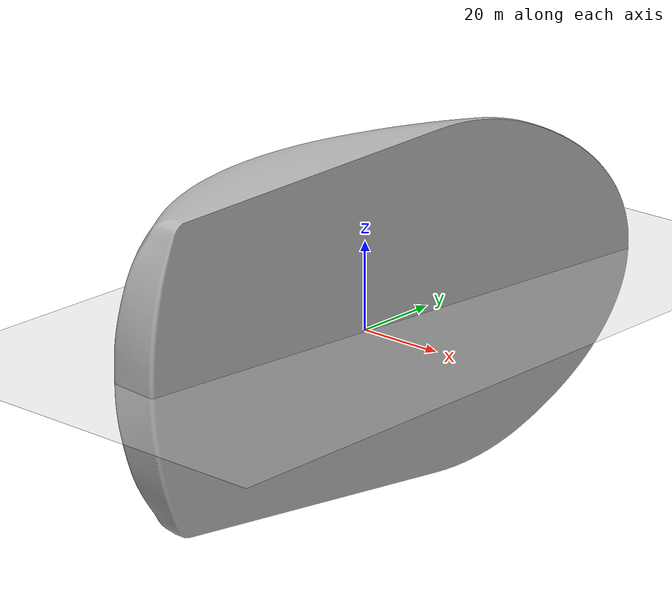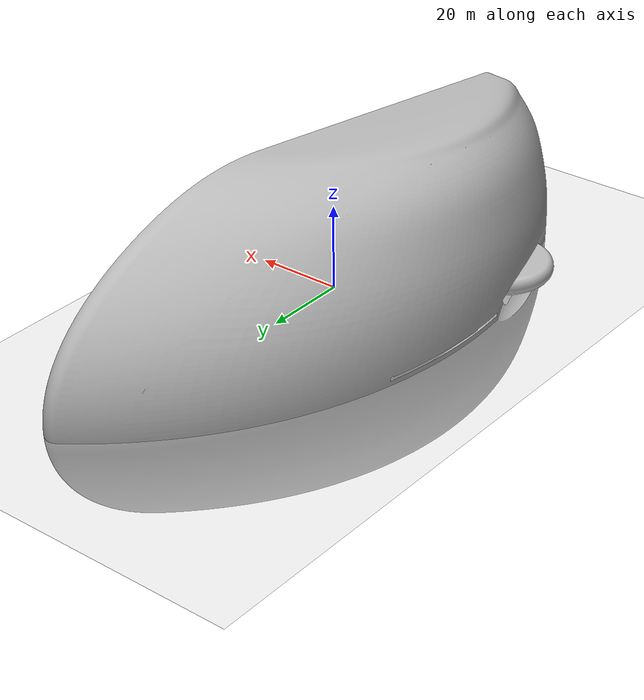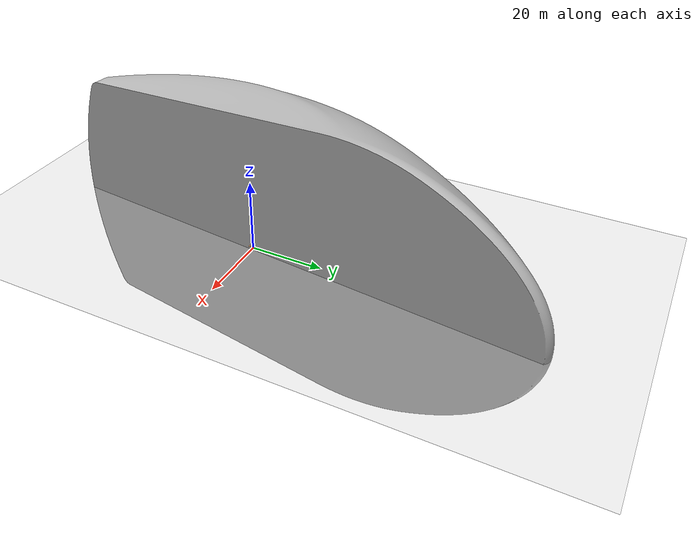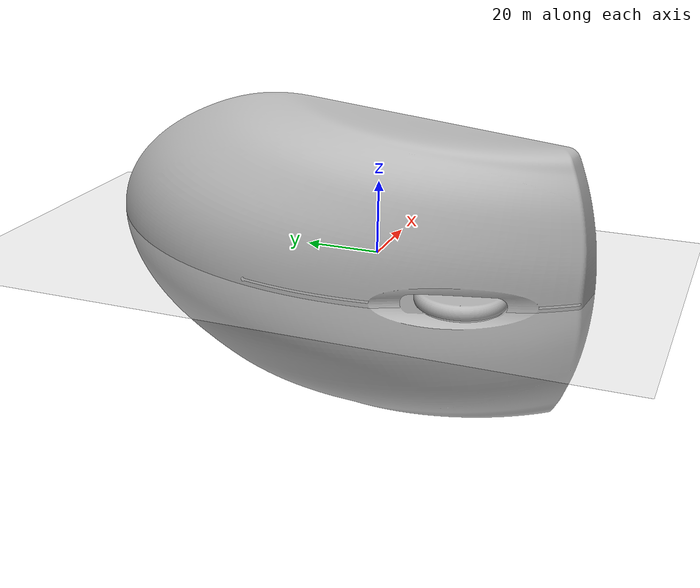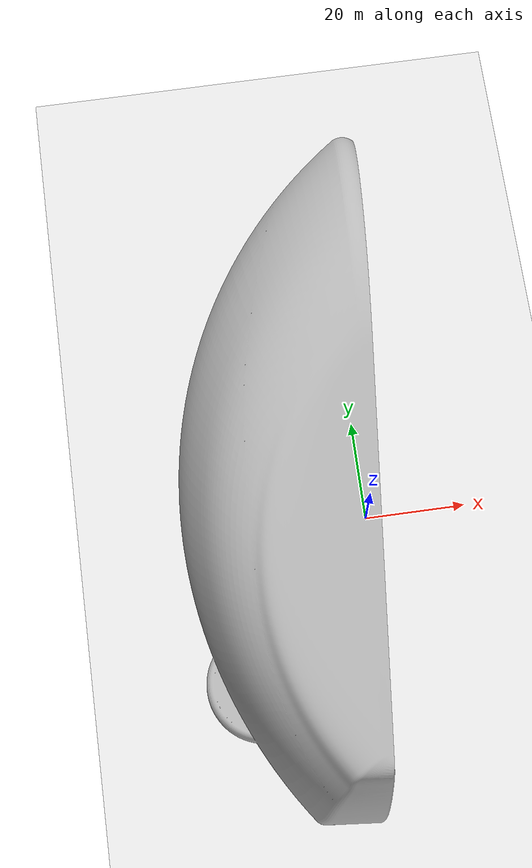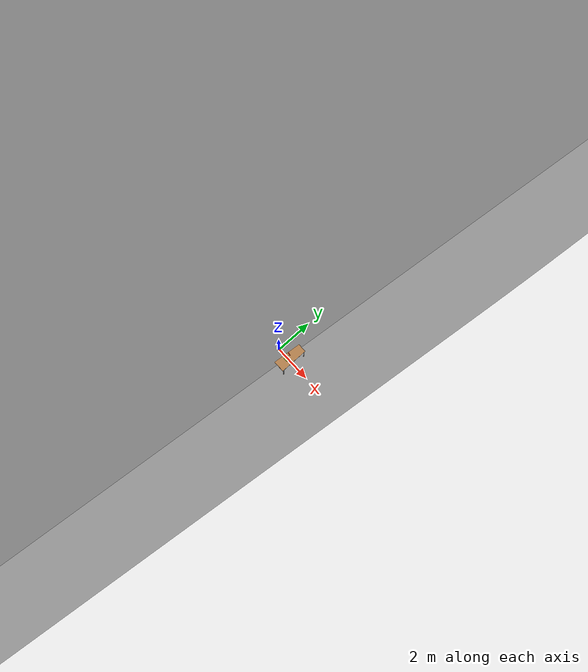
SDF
<sdf version="1.7">
 <world name="default">
  <plugin name="gazebo_ros_paths" filename="libgazebo_ros_paths_plugin.so"/>
  <light name="sun" type="directional">
   <pose>0 0 10 0 -0 0</pose>
   <diffuse>0.8 0.8 0.8 1</diffuse>
   <specular>0.2 0.2 0.2 1</specular>
   <attenuation>
    <range>1000</range>
    <constant>0.9</constant>
    <linear>0.01</linear>
    <quadratic>0.001</quadratic>
   </attenuation>
   <direction>-0.5 0.1 -0.9</direction>
   <spot><inner_angle>0</inner_angle><outer_angle>0</outer_angle><falloff>0</falloff></spot>
  </light>
  <model name="ground_plane">
   <static>1</static>
   <link name="link">
    <collision name="collision">
     <geometry><plane><normal>0 0 1</normal><size>100 100</size></plane></geometry>
     <surface><friction><ode><mu>100</mu><mu2>50</mu2></ode></friction></surface>
    </collision>
    <visual name="visual">
     <cast_shadows>0</cast_shadows>
     <geometry><plane><normal>0 0 1</normal><size>100 100</size></plane></geometry>
     <material>
      <script><uri>file://media/materials/scripts/gazebo.material</uri><name>Gazebo/Grey</name></script>
     </material>
    </visual>
   </link>
  </model>
  <gravity>0 0 -9.8</gravity>
  <magnetic_field>6e-06 2.3e-05 -4.2e-05</magnetic_field>
  <atmosphere type="adiabatic"/>
  <physics type="ode">
   <max_step_size>0.001</max_step_size>
   <real_time_factor>1</real_time_factor>
   <real_time_update_rate>1000</real_time_update_rate>
  </physics>
  <scene><ambient>0.4 0.4 0.4 1</ambient><background>0.7 0.7 0.7 1</background><shadows>1</shadows></scene>
  <audio><device>default</device></audio>
  <spherical_coordinates>
   <surface_model>EARTH_WGS84</surface_model>
   <latitude_deg>0</latitude_deg>
   <longitude_deg>0</longitude_deg>
   <elevation>0</elevation>
   <heading_deg>0</heading_deg>
  </spherical_coordinates>
  <model name="table">
   <static>1</static>
   <link name="link">
    <collision name="surface">
     <pose>0 0 1 0 -0 0</pose>
     <geometry><box><size>1.5 0.8 0.03</size></box></geometry>
     <surface>
      <friction><ode><mu>5</mu><mu2>5</mu2></ode></friction>
      <contact><ode><kp>2e+06</kp><kd>50</kd><min_depth>0.001</min_depth><max_vel>0.1</max_vel></ode></contact>
      <bounce><restitution_coefficient>0</restitution_coefficient><threshold>100000</threshold></bounce>
     </surface>
    </collision>
    <visual name="visual1">
     <pose>0 0 1 0 -0 0</pose>
     <geometry><box><size>1.5 0.8 0.03</size></box></geometry>
     <material>
      <script><uri>file://media/materials/scripts/gazebo.material</uri><name>Gazebo/Wood</name></script>
     </material>
    </visual>
    <collision name="front_left_leg">
     <pose>0.68 0.38 0.5 0 -0 0</pose>
     <geometry><cylinder><radius>0.02</radius><length>1</length></cylinder></geometry>
    </collision>
    <visual name="front_left_leg">
     <pose>0.68 0.38 0.5 0 -0 0</pose>
     <geometry><cylinder><radius>0.02</radius><length>1</length></cylinder></geometry>
     <material>
      <script><uri>file://media/materials/scripts/gazebo.material</uri><name>Gazebo/Grey</name></script>
     </material>
    </visual>
    <collision name="front_right_leg">
     <pose>0.68 -0.38 0.5 0 -0 0</pose>
     <geometry><cylinder><radius>0.02</radius><length>1</length></cylinder></geometry>
    </collision>
    <visual name="front_right_leg">
     <pose>0.68 -0.38 0.5 0 -0 0</pose>
     <geometry><cylinder><radius>0.02</radius><length>1</length></cylinder></geometry>
     <material>
      <script><uri>file://media/materials/scripts/gazebo.material</uri><name>Gazebo/Grey</name></script>
     </material>
    </visual>
    <collision name="back_right_leg">
     <pose>-0.68 -0.38 0.5 0 -0 0</pose>
     <geometry><cylinder><radius>0.02</radius><length>1</length></cylinder></geometry>
    </collision>
    <visual name="back_right_leg">
     <pose>-0.68 -0.38 0.5 0 -0 0</pose>
     <geometry><cylinder><radius>0.02</radius><length>1</length></cylinder></geometry>
     <material>
      <script><uri>file://media/materials/scripts/gazebo.material</uri><name>Gazebo/Grey</name></script>
     </material>
    </visual>
    <collision name="back_left_leg">
     <pose>-0.68 0.38 0.5 0 -0 0</pose>
     <geometry><cylinder><radius>0.02</radius><length>1</length></cylinder></geometry>
    </collision>
    <visual name="back_left_leg">
     <pose>-0.68 0.38 0.5 0 -0 0</pose>
     <geometry><cylinder><radius>0.02</radius><length>1</length></cylinder></geometry>
     <material>
      <script><uri>file://media/materials/scripts/gazebo.material</uri><name>Gazebo/Grey</name></script>
     </material>
    </visual>
   </link>
   <pose>0.716827 -0.005342 0 0 0.000248 1.56791</pose>
  </model>
  <model name="robo_basement">
   <link name="link_0">
    <inertial>
     <mass>1</mass>
     <inertia><ixx>0.145833</ixx><ixy>0</ixy><ixz>0</ixz><iyy>0.145833</iyy><iyz>0</iyz><izz>0.125</izz></inertia>
    </inertial>
    <visual name="visual">
     <geometry><cylinder><radius>0.2</radius><length>0.8</length></cylinder></geometry>
     <material>
      <lighting>1</lighting>
      <script><uri>file://media/materials/scripts/gazebo.material</uri><name>Gazebo/Grey</name></script>
      <shader type="pixel"><normal_map>__default__</normal_map></shader>
      <ambient>0 0 1 1</ambient>
      <diffuse>0.7 0.7 0.7 1</diffuse>
      <specular>0.01 0.01 0.01 1</specular>
      <emissive>0 0 0 1</emissive>
     </material>
    </visual>
    <collision name="collision">
     <geometry><cylinder><radius>0.2</radius><length>0.8</length></cylinder></geometry>
     <surface>
      <friction>
       <ode><mu>1</mu><mu2>1</mu2><fdir1>0 0 0</fdir1><slip1>0</slip1><slip2>0</slip2></ode>
       <torsional>
        <coefficient>1</coefficient>
        <patch_radius>0</patch_radius>
        <surface_radius>0</surface_radius>
        <use_patch_radius>1</use_patch_radius>
        <ode><slip>0</slip></ode>
       </torsional>
      </friction>
      <bounce><restitution_coefficient>0</restitution_coefficient><threshold>1e+06</threshold></bounce>
      <contact>
       <collide_without_contact>0</collide_without_contact>
       <collide_without_contact_bitmask>1</collide_without_contact_bitmask>
       <collide_bitmask>1</collide_bitmask>
       <ode>
        <soft_cfm>0</soft_cfm>
        <soft_erp>0.2</soft_erp>
        <kp>1e+13</kp>
        <kd>1</kd>
        <max_vel>0.01</max_vel>
        <min_depth>0</min_depth>
       </ode>
       <bullet>
        <split_impulse>1</split_impulse>
        <split_impulse_penetration_threshold>-0.01</split_impulse_penetration_threshold>
        <soft_cfm>0</soft_cfm>
        <soft_erp>0.2</soft_erp>
        <kp>1e+13</kp>
        <kd>1</kd>
       </bullet>
      </contact>
     </surface>
    </collision>
   </link>
   <static>0</static>
   <pose>4.5e-05 1.4e-05 0.39999 -0 -0 -5e-06</pose>
  </model>
  <model name="green_cube">
   <link name="link_1">
    <inertial>
     <mass>1</mass>
     <inertia>
      <ixx>0.166667</ixx>
      <ixy>0</ixy>
      <ixz>0</ixz>
      <iyy>0.166667</iyy>
      <iyz>0</iyz>
      <izz>0.166667</izz>
     </inertia>
    </inertial>
    <visual name="visual">
     <geometry><box><size>0.04 0.04 0.04</size></box></geometry>
     <material>
      <lighting>1</lighting>
      <script><uri>file://media/materials/scripts/gazebo.material</uri><name>Gazebo/Grey</name></script>
      <shader type="pixel"><normal_map>__default__</normal_map></shader>
      <ambient>0 1 0 1</ambient>
      <diffuse>0.7 0.7 0.7 1</diffuse>
      <specular>0.01 0.01 0.01 1</specular>
      <emissive>0 0 0 1</emissive>
     </material>
    </visual>
    <collision name="collision">
     <geometry><box><size>0.04 0.04 0.04</size></box></geometry>
     <surface>
      <friction>
       <ode><mu>1</mu><mu2>1</mu2><fdir1>0 0 0</fdir1><slip1>0</slip1><slip2>0</slip2></ode>
       <torsional>
        <coefficient>1</coefficient>
        <patch_radius>0</patch_radius>
        <surface_radius>0</surface_radius>
        <use_patch_radius>1</use_patch_radius>
        <ode><slip>0</slip></ode>
       </torsional>
      </friction>
      <bounce><restitution_coefficient>0</restitution_coefficient><threshold>1e+06</threshold></bounce>
      <contact>
       <collide_without_contact>0</collide_without_contact>
       <collide_without_contact_bitmask>1</collide_without_contact_bitmask>
       <collide_bitmask>1</collide_bitmask>
       <ode>
        <soft_cfm>0</soft_cfm>
        <soft_erp>0.2</soft_erp>
        <kp>1e+13</kp>
        <kd>1</kd>
        <max_vel>0.01</max_vel>
        <min_depth>0</min_depth>
       </ode>
       <bullet>
        <split_impulse>1</split_impulse>
        <split_impulse_penetration_threshold>-0.01</split_impulse_penetration_threshold>
        <soft_cfm>0</soft_cfm>
        <soft_erp>0.2</soft_erp>
        <kp>1e+13</kp>
        <kd>1</kd>
       </bullet>
      </contact>
     </surface>
    </collision>
   </link>
   <static>0</static>
   <pose>0.565717 -0.003296 1.035 -0.000248 6e-06 0.019427</pose>
  </model>
  <plugin name="gazebo_link_attacher" filename="libgazebo_link_attacher.so"/>
  <model name="Stapler">
   <static>0</static>
   <link name="link">
    <inertial>
     <mass>0.2</mass>
     <inertia><ixx>0.0002</ixx><iyy>0.0006</iyy><izz>0.0007</izz><ixy>0</ixy><ixz>0</ixz><iyz>0</iyz></inertia>
    </inertial>
    <visual name="visual">
     <geometry><mesh><uri>model://Stapler/meshes/Stapler.dae</uri><scale>1 1 1</scale></mesh></geometry>
    </visual>
    <collision name="collision">
     <geometry><mesh><uri>model://Stapler/meshes/Stapler.dae</uri><scale>1 1 1</scale></mesh></geometry>
     <surface><friction><ode><mu>1.2</mu><mu2>1.2</mu2></ode></friction></surface>
    </collision>
   </link>
   <pose>0.701735 0.052897 1.01594 5.4e-05 -1e-05 -1.77466</pose>
  </model>
  <model name="scissor">
   <static>0</static>
   <link name="link">
    <inertial>
     <mass>0.12</mass>
     <inertia><ixx>5e-05</ixx><iyy>0.00035</iyy><izz>0.00038</izz><ixy>0</ixy><ixz>0</ixz><iyz>0</iyz></inertia>
    </inertial>
    <visual name="visual">
     <geometry><mesh><uri>model://scissor/meshes/scissor.dae</uri><scale>1 1 1</scale></mesh></geometry>
    </visual>
    <collision name="collision">
     <geometry><mesh><uri>model://scissor/meshes/scissor.dae</uri><scale>1 1 1</scale></mesh></geometry>
     <surface><friction><ode><mu>1.3</mu><mu2>1.3</mu2></ode></friction></surface>
    </collision>
   </link>
   <pose>0.729417 -0.084623 1.01853 0.012553 -0.000322 -1.98412</pose>
  </model>
  <model name="calculator">
   <static>0</static>
   <link name="link">
    <inertial>
     <mass>0.15</mass>
     <inertia><ixx>0.00015</ixx><iyy>0.0003</iyy><izz>0.00035</izz><ixy>0</ixy><ixz>0</ixz><iyz>0</iyz></inertia>
    </inertial>
    <visual name="visual">
     <geometry><mesh><uri>model://calculator/meshes/calculator.dae</uri><scale>1 1 1</scale></mesh></geometry>
    </visual>
    <collision name="collision">
     <geometry><mesh><uri>model://calculator/meshes/calculator.dae</uri><scale>1 1 1</scale></mesh></geometry>
     <surface><friction><ode><mu>1.2</mu><mu2>1.2</mu2></ode></friction></surface>
    </collision>
   </link>
   <pose>0.77033 -0.234126 1.02352 -0.000248 0.016483 -0.004725</pose>
  </model>
  <model name="mouse">
   <static>0</static>
   <link name="link">
    <inertial>
     <mass>0.1</mass>
     <inertia><ixx>0.0001</ixx><iyy>0.0002</iyy><izz>0.00025</izz><ixy>0</ixy><ixz>0</ixz><iyz>0</iyz></inertia>
    </inertial>
    <visual name="visual">
     <geometry><mesh><uri>model://mouse/meshes/mouse.dae</uri><scale>1 1 1</scale></mesh></geometry>
    </visual>
    <collision name="collision">
     <geometry><mesh><uri>model://mouse/meshes/mouse.dae</uri><scale>1 1 1</scale></mesh></geometry>
     <surface><friction><ode><mu>1.2</mu><mu2>1.2</mu2></ode></friction></surface>
    </collision>
   </link>
   <pose>0.556506 -0.207647 1.0155 -1.6e-05 0.000246 1.47025</pose>
  </model>
 </world>
</sdf>
